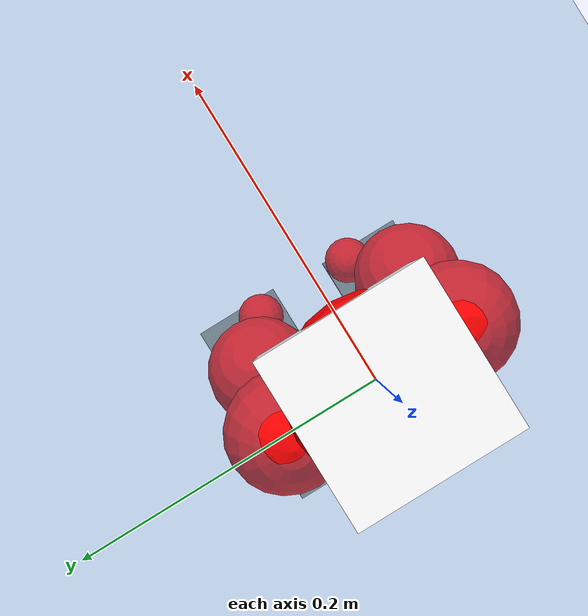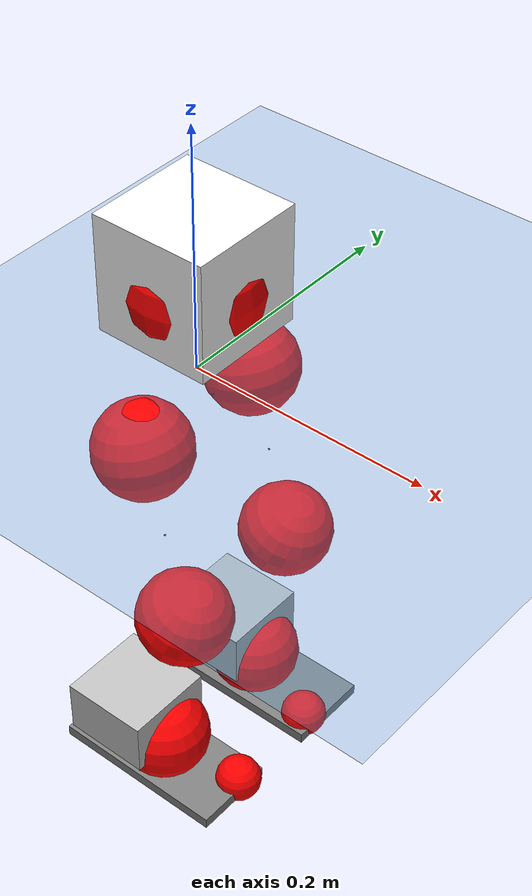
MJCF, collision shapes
<mujoco model="pi_12dof_release_v1">
  <compiler angle="radian" assetdir="assets" balanceinertia="true" inertiafromgeom="false"/>

  <option timestep="0.005" density="1.2" viscosity="2e-05"/>

  <size nkey="1"/>

  <visual>
    <quality shadowsize="8192"/>
    <map shadowclip="0.5"/>
  </visual>

  <default>
    <default class="/">
      <joint armature="0.01" damping="0.01" frictionloss="0.01"/>
      <geom contype="0" conaffinity="0" group="1" solref="-1000 -80"/>
      <site size="0.01 0.005 0.005" group="5"/>
      <general forcelimited="true" biastype="affine" gainprm="20" biasprm="0 -20 -0.5"/>
      <default class="foot">
        <geom size="0.0845 0.036 0.005" type="box" condim="6" group="4" priority="1" friction="0.9 0.2 0.2" solimp="0.015 1 0.005"/>
      </default>
      <default class="reward_collision_sphere">
        <geom group="5" rgba="1 0 0 1"/>
      </default>
    </default>
  </default>

  <asset>
    <texture type="skybox" colorspace="auto" name="//unnamed_texture_0" builtin="gradient" rgb1="0.95 0.95 0.95" rgb2="0.95 0.95 0.95" width="100" height="600"/>
    <texture type="2d" colorspace="auto" name="texplane" builtin="checker" rgb1="0.345 0.575 0.748" rgb2="0.345 0.575 0.748" markrgb="1 1 1" width="512" height="512"/>
    <material name="MatPlane" class="/" texture="texplane" texuniform="true" texrepeat="2 2" specular="0.9"/>
    <mesh name="baselink_1" class="/" file="baselink_1.STL"/>
    <mesh name="r_hip_pitch_link" class="/" file="r_hip_pitch_link.STL"/>
    <mesh name="r_hip_roll_link" class="/" file="r_hip_roll_link.STL"/>
    <mesh name="r_thigh_link" class="/" file="r_thigh_link.STL"/>
    <mesh name="r_calf_link" class="/" file="r_calf_link.STL"/>
    <mesh name="r_ankle_pitch_link" class="/" file="r_ankle_pitch_link.STL"/>
    <mesh name="r_ankle_roll_link" class="/" file="r_ankle_roll_link.STL"/>
    <mesh name="l_hip_pitch_link" class="/" file="l_hip_pitch_link.STL"/>
    <mesh name="l_hip_roll_link" class="/" file="l_hip_roll_link.STL"/>
    <mesh name="l_thigh_link" class="/" file="l_thigh_link.STL"/>
    <mesh name="l_calf_link" class="/" file="l_calf_link.STL"/>
    <mesh name="l_ankle_pitch_link" class="/" file="l_ankle_pitch_link.STL"/>
    <mesh name="l_ankle_roll_link" class="/" file="l_ankle_roll_link.STL"/>
  </asset>

  <worldbody>
    <geom name="floor" class="/" size="100 100 0.125" type="plane" group="0" material="MatPlane"/>
    <light name="toplight_shadow" class="/" pos="0 0 5" dir="0.0990148 0.0990148 -0.990148" type="directional" ambient="0.04 0.04 0.04" diffuse="0.55 0.55 0.55" specular="0.12 0.12 0.12"/>
    <light name="toplight_fill" class="/" pos="0 0 5" dir="0.0990148 0.0990148 -0.990148" type="directional" castshadow="false" ambient="0.04 0.04 0.04" diffuse="0.3 0.3 0.3" specular="0.08 0.08 0.08"/>
    <body name="trunk" pos="-0.000181704 0.000865225 -0.000355312" quat="1 0.000151022 -9.55815e-05 0.000394617">
      <inertial pos="0.00299 -0.00098389 0.0429226" quat="0.693749 0.00712037 0.0090836 0.720125" mass="1.91788" diaginertia="0.0113808 0.00255007 0.00620391"/>
      <joint name="//unnamed_joint_0" type="free"/>
      <geom name="//unnamed_geom_1" class="/" type="mesh" density="0" rgba="1 1 1 1" mesh="baselink_1"/>
      <geom name="//unnamed_geom_2" class="/" size="0.0482324 0.0482324 0.0482324" pos="0 0 0.0868162" type="box" rgba="1 1 1 1"/>
      <geom name="//unnamed_geom_3" class="reward_collision_sphere" size="0.0530557" pos="0 0 0.0759642"/>
      <site name="imu" class="/" pos="0.00127137 -0.00101364 -0.000996501" size="0.00964649"/>
      <camera name="track" class="/" pos="0 -1.55391 0" quat="0.707107 0.707107 0 0" mode="trackcom"/>
      <camera name="ego_camera" class="/" pos="0.0773843 0 0.195337" quat="-0.5 -0.5 0.5 0.5"/>
      <body name="r_hip_pitch_link" pos="0.00125695 -0.01731 -0.0356033" quat="0.992216 -0.000116471 -0.124528 7.7167e-05">
        <inertial pos="0.00115629 -0.0432109 -0.000533849" quat="-0.0169763 0.704666 -0.0305605 0.708678" mass="0.334577" diaginertia="0.000128009 2.80296e-05 0.000125841"/>
        <joint name="r_hip_pitch_joint" class="/" pos="0 0 0" axis="-0.000645136 -0.999999 -0.000774642" stiffness="0.00176129" range="-1.76579 1.23661" armature="0.00975421" damping="0.012903" frictionloss="0.00962084"/>
        <geom name="//unnamed_geom_4" class="/" type="mesh" density="0" rgba="0.75294 0.75294 0.75294 1" mesh="r_hip_pitch_link"/>
        <geom name="//unnamed_geom_5" class="/" size="0.000482324 0.000482324 0.000482324" type="box" rgba="0.75294 0.75294 0.75294 1"/>
        <body name="r_hip_roll_link" pos="-0.000107792 -0.0441236 -0.000517977" quat="1 -5.8813e-05 -7.57969e-05 -3.31075e-05">
          <inertial pos="-0.00135399 0.000128968 -0.0670319" quat="0.706107 -0.0791614 -0.0826183 0.698799" mass="0.346145" diaginertia="0.000392634 7.89594e-05 0.000193165"/>
          <joint name="r_hip_roll_joint" class="/" pos="0 0 0" axis="-0.999999 -0.000656668 0.00139751" range="-0.118395 0.493521" armature="0.00924658" damping="0.00453917" frictionloss="0.00977578"/>
          <geom name="//unnamed_geom_6" class="/" type="mesh" density="0" rgba="0.75294 0.75294 0.75294 1" mesh="r_hip_roll_link"/>
          <geom name="//unnamed_geom_7" class="/" size="0.000482324 0.000482324 0.000482324" type="box" rgba="0.75294 0.75294 0.75294 1"/>
          <geom name="//unnamed_geom_8" class="reward_collision_sphere" size="0.038586"/>
          <body name="r_thigh_link" pos="-6.48803e-05 -0.000611221 -0.0756136" quat="1 8.30506e-06 -3.74396e-06 2.49698e-05">
            <inertial pos="0.000752624 0.00130337 -0.0509131" quat="0.736879 0.676024 0.000406757 -0.0001856" mass="0.102518" diaginertia="0.000147567 2.70448e-05 8.83693e-05"/>
            <joint name="r_thigh_joint" class="/" pos="0 0 0" axis="0.00280795 -0.00319941 -0.999991" range="-0.305431 0.588773" armature="0.00933605" damping="0" frictionloss="0.00969999"/>
            <geom name="//unnamed_geom_9" class="/" type="mesh" density="0" rgba="0.75294 0.75294 0.75294 1" mesh="r_thigh_link"/>
            <geom name="//unnamed_geom_10" class="/" size="0.000482324 0.000482324 0.000482324" type="box" rgba="0.75294 0.75294 0.75294 1"/>
            <body name="r_calf_link" pos="-0.000930747 -0.000845581 -0.076016" quat="0.947674 0.00020712 0.319238 3.34541e-05">
              <inertial pos="-0.000824215 -0.000884753 -0.0757808" quat="0.999989 -0.00201959 -4.67239e-05 0.00418365" mass="0.731908" diaginertia="0.00417246 0.00099083 0.000264016"/>
              <joint name="r_calf_joint" class="/" pos="0 0 0" axis="0.00388128 -0.99999 0.00217501" range="-1.63874 0.643357" armature="0.00962057" damping="0.0119878" frictionloss="0.00955678"/>
              <geom name="//unnamed_geom_11" class="/" type="mesh" density="0" rgba="0.75294 0.75294 0.75294 1" mesh="r_calf_link"/>
              <geom name="//unnamed_geom_12" class="/" size="0.000482324 0.000482324 0.000482324" type="box" rgba="0.75294 0.75294 0.75294 1"/>
              <geom name="//unnamed_geom_13" class="reward_collision_sphere" size="0.038586"/>
              <body name="r_ankle_pitch_link" pos="0.00086336 0.00151469 -0.152269" quat="0.980066 1.69002e-07 -0.19867 2.93809e-07">
                <inertial pos="0.00454784 0.00361248 -0.000235184" quat="0.00289876 0.706801 -0.00231839 0.707403" mass="0.15852" diaginertia="0.00036316 6.27144e-05 0.000180058"/>
                <joint name="r_ankle_pitch_joint" class="/" pos="0 0 0" axis="-0.00162785 -0.999998 -0.000765598" range="-1.28101 0.502825" armature="0.0094001" damping="0.00842039" frictionloss="0.00948725"/>
                <geom name="//unnamed_geom_14" class="/" type="mesh" density="0" rgba="0.75294 0.75294 0.75294 1" mesh="r_ankle_pitch_link"/>
                <geom name="//unnamed_geom_15" class="/" size="0.0376213 0.038586 0.0241162" type="box" rgba="0.75294 0.75294 0.75294 1"/>
                <body name="r_ankle_roll_link" pos="0.0782395 0.00391086 -6.52251e-05" quat="1 -0.000140165 3.64438e-05 -5.91821e-05">
                  <inertial pos="-0.0236996 -0.000848094 -0.0160044" quat="0.559792 0.430742 0.4336 0.559541" mass="0.467561" diaginertia="0.00132957 0.000290215 0.000432629"/>
                  <joint name="r_ankle_roll_joint" class="/" pos="0 0 0" axis="-0.999997 -0.0026009 -0.000425097" range="-0.141914 0.137118" armature="0.00980346" damping="0.00257517" frictionloss="0.00980867"/>
                  <geom name="//unnamed_geom_16" class="/" type="mesh" density="0" rgba="0.75294 0.75294 0.75294 1" mesh="r_ankle_roll_link"/>
                  <geom name="//unnamed_geom_17" class="/" type="mesh" rgba="0.75294 0.75294 0.75294 1" mesh="r_ankle_roll_link"/>
                  <geom name="right_foot" class="foot" size="0.0769482 0.0352753 0.0048042" pos="-0.0526213 0 -0.0477489"/>
                  <geom name="//unnamed_geom_19" class="reward_collision_sphere" size="0.038586" pos="-0.0515895 0 -0.0217041"/>
                  <geom name="//unnamed_geom_20" class="reward_collision_sphere" size="0.019293" pos="0.0154769 0.0155391 -0.0434081"/>
                  <geom name="//unnamed_geom_21" class="reward_collision_sphere" size="0.019293" pos="-0.123815 0.0155391 -0.0434081"/>
                  <site name="right_foot" class="foot" pos="-0.0526213 0 -0.0477489" size="0.00964649"/>
                </body>
              </body>
            </body>
          </body>
        </body>
      </body>
      <body name="l_hip_pitch_link" pos="-0.000846245 0.0172323 -0.0358306" quat="0.992181 5.56851e-05 -0.124807 5.77776e-05">
        <inertial pos="0.00136577 0.0412774 -0.00110151" quat="-0.0393541 0.706578 0.0277726 0.705994" mass="0.347664" diaginertia="0.000149403 2.99437e-05 0.000150234"/>
        <joint name="l_hip_pitch_joint" class="/" pos="0 0 0" axis="0.00038904 1 0.000125691" range="-1.25052 1.74345" armature="0.00972268" damping="0.00994377" frictionloss="0.00964663"/>
        <geom name="//unnamed_geom_22" class="/" type="mesh" density="0" rgba="0.75294 0.75294 0.75294 1" mesh="l_hip_pitch_link"/>
        <geom name="//unnamed_geom_23" class="/" size="0.000482324 0.000482324 0.000482324" type="box" rgba="0.75294 0.75294 0.75294 1"/>
        <body name="l_hip_roll_link" pos="0.000329808 0.044178 0.000471365" quat="1 1.38626e-05 4.05521e-06 9.78863e-07">
          <inertial pos="-0.000728328 0.00050938 -0.0660008" quat="0.696828 -0.0753293 -0.0762691 0.709182" mass="0.348143" diaginertia="0.000393313 7.7966e-05 0.000192771"/>
          <joint name="l_hip_roll_joint" class="/" pos="0 0 0" axis="-0.999986 0.00425492 0.00322939" stiffness="0.000367747" range="-0.503628 0.122525" armature="0.00977023" damping="0.00440748" frictionloss="0.00998134"/>
          <geom name="//unnamed_geom_24" class="/" type="mesh" density="0" rgba="0.75294 0.75294 0.75294 1" mesh="l_hip_roll_link"/>
          <geom name="//unnamed_geom_25" class="/" size="0.000482324 0.000482324 0.000482324" type="box" rgba="0.75294 0.75294 0.75294 1"/>
          <geom name="//unnamed_geom_26" class="reward_collision_sphere" size="0.038586"/>
          <body name="l_thigh_link" pos="-0.000498623 -0.000173803 -0.075652" quat="1 2.99043e-06 -0.000243069 4.5863e-05">
            <inertial pos="0.000607313 -0.0021693 -0.0519633" quat="0.676192 0.736725 0.000455874 -0.000573802" mass="0.100939" diaginertia="0.000148042 2.71438e-05 8.81971e-05"/>
            <joint name="l_thigh_joint" class="/" pos="0 0 0" axis="6.21105e-05 -0.000496291 -1" range="-0.594618 0.306238" armature="0.00998877" damping="0.00469871" frictionloss="0.00978382"/>
            <geom name="//unnamed_geom_27" class="/" type="mesh" density="0" rgba="0.75294 0.75294 0.75294 1" mesh="l_thigh_link"/>
            <geom name="//unnamed_geom_28" class="/" size="0.000482324 0.000482324 0.000482324" type="box" rgba="0.75294 0.75294 0.75294 1"/>
            <body name="l_calf_link" pos="-0.000642598 -4.08989e-05 -0.075462" quat="0.947617 3.95886e-05 0.31941 0.000335646">
              <inertial pos="9.74068e-05 0.00213321 -0.0766162" quat="0.999985 0.00306097 -0.000273069 0.00445727" mass="0.735417" diaginertia="0.00414736 0.00100167 0.00026658"/>
              <joint name="l_calf_joint" class="/" pos="0 0 0" axis="-0.000114731 0.999999 -0.00161059" range="-0.660013 1.64765" armature="0.00987648" damping="0.00846041" frictionloss="0.00985695"/>
              <geom name="//unnamed_geom_29" class="/" type="mesh" density="0" rgba="0.75294 0.75294 0.75294 1" mesh="l_calf_link"/>
              <geom name="//unnamed_geom_30" class="/" size="0.000482324 0.000482324 0.000482324" type="box" rgba="0.75294 0.75294 0.75294 1"/>
              <geom name="//unnamed_geom_31" class="reward_collision_sphere" size="0.038586"/>
              <body name="l_ankle_pitch_link" pos="0.00141622 0.00025814 -0.151915" quat="0.980066 -2.87658e-05 -0.198672 1.91124e-05">
                <inertial pos="0.00499213 8.86146e-05 -0.000336238" quat="-0.00189484 0.707165 0.00258824 0.707041" mass="0.159612" diaginertia="0.000362823 6.2835e-05 0.000183319"/>
                <joint name="l_ankle_pitch_joint" class="/" pos="0 0 0" axis="0.000448571 1 -0.000882989" range="-0.509291 1.29935" armature="0.00978831" damping="0.00394343" frictionloss="0.0100437"/>
                <geom name="//unnamed_geom_32" class="/" type="mesh" density="0" rgba="0.75294 0.75294 0.75294 1" mesh="l_ankle_pitch_link"/>
                <geom name="//unnamed_geom_33" class="/" size="0.0376213 0.038586 0.0241162" type="box" rgba="0.75294 0.75294 0.75294 1"/>
                <body name="l_ankle_roll_link" pos="0.0774 0.000143341 -0.00026246" quat="1 -2.74427e-05 2.44402e-05 3.20479e-05">
                  <inertial pos="-0.0241267 -0.000646176 -0.0157808" quat="0.559928 0.430626 0.434016 0.559171" mass="0.46108" diaginertia="0.00133194 0.000290623 0.000428277"/>
                  <joint name="l_ankle_roll_joint" class="/" pos="0 0 0" axis="-1 -0.00058519 -0.000548369" stiffness="2.40334e-05" range="-0.148949 0.15131" armature="0.0095793" damping="0.00536284" frictionloss="0.0095943"/>
                  <geom name="//unnamed_geom_34" class="/" type="mesh" density="0" rgba="0.75294 0.75294 0.75294 1" mesh="l_ankle_roll_link"/>
                  <geom name="//unnamed_geom_35" class="/" type="mesh" rgba="0.75294 0.75294 0.75294 1" mesh="l_ankle_roll_link"/>
                  <geom name="left_foot" class="foot" size="0.0828296 0.0364041 0.00478265" pos="-0.0526213 0 -0.0477489"/>
                  <geom name="//unnamed_geom_37" class="reward_collision_sphere" size="0.038586" pos="-0.0515895 0 -0.0217041"/>
                  <geom name="//unnamed_geom_38" class="reward_collision_sphere" size="0.019293" pos="0.0154769 -0.0155391 -0.0434081"/>
                  <geom name="//unnamed_geom_39" class="reward_collision_sphere" size="0.019293" pos="-0.123815 -0.0155391 -0.0434081"/>
                  <site name="left_foot" class="foot" pos="-0.0526213 0 -0.0477489" size="0.00964649"/>
                </body>
              </body>
            </body>
          </body>
        </body>
      </body>
    </body>
  </worldbody>

  <contact>
    <pair class="/" geom1="floor" geom2="right_foot" name="//unnamed_contact_1"/>
    <pair class="/" geom1="floor" geom2="left_foot" name="//unnamed_contact_0"/>
  </contact>

  <actuator>
    <general name="r_hip_pitch_joint" class="/" joint="r_hip_pitch_joint" forcerange="-20.3725 20.3725" gainprm="19.5487" biasprm="0 -19.5487 -0.4715"/>
    <general name="r_hip_roll_joint" class="/" joint="r_hip_roll_joint" forcerange="-20.581 20.581" gainprm="19.5487" biasprm="0 -19.5487 -0.4715"/>
    <general name="r_thigh_joint" class="/" joint="r_thigh_joint" forcerange="-20.3656 20.3656" gainprm="19.5487" biasprm="0 -19.5487 -0.4715"/>
    <general name="r_calf_joint" class="/" joint="r_calf_joint" forcerange="-20.0481 20.0481" gainprm="19.5487" biasprm="0 -19.5487 -0.4715"/>
    <general name="r_ankle_pitch_joint" class="/" joint="r_ankle_pitch_joint" forcerange="-20.2078 20.2078" gainprm="19.5487" biasprm="0 -19.5487 -0.4715"/>
    <general name="r_ankle_roll_joint" class="/" joint="r_ankle_roll_joint" forcerange="-19.6422 19.6422" gainprm="19.5487" biasprm="0 -19.5487 -0.4715"/>
    <general name="l_hip_pitch_joint" class="/" joint="l_hip_pitch_joint" forcerange="-19.9324 19.9324" gainprm="19.5487" biasprm="0 -19.5487 -0.4715"/>
    <general name="l_hip_roll_joint" class="/" joint="l_hip_roll_joint" forcerange="-20.3734 20.3734" gainprm="19.5487" biasprm="0 -19.5487 -0.4715"/>
    <general name="l_thigh_joint" class="/" joint="l_thigh_joint" forcerange="-20.2115 20.2115" gainprm="19.5487" biasprm="0 -19.5487 -0.4715"/>
    <general name="l_calf_joint" class="/" joint="l_calf_joint" forcerange="-20.6507 20.6507" gainprm="19.5487" biasprm="0 -19.5487 -0.4715"/>
    <general name="l_ankle_pitch_joint" class="/" joint="l_ankle_pitch_joint" forcerange="-20.2197 20.2197" gainprm="19.5487" biasprm="0 -19.5487 -0.4715"/>
    <general name="l_ankle_roll_joint" class="/" joint="l_ankle_roll_joint" forcerange="-20.885 20.885" gainprm="19.5487" biasprm="0 -19.5487 -0.4715"/>
  </actuator>

  <sensor>
    <gyro site="imu" name="imu_angular_velocity"/>
    <velocimeter site="imu" name="imu_linear_velocity"/>
    <framelinvel objtype="site" objname="left_foot" name="left_foot_global_linear_velocity"/>
    <framelinvel objtype="site" objname="right_foot" name="right_foot_global_linear_velocity"/>
  </sensor>

  <keyframe>
    <key name="home" qpos="0 0 0.291 1 0 0 0 0.4 0 0 -0.8 0.4 0 -0.4 0 0 0.8 -0.4 0"/>
  </keyframe>
</mujoco>
